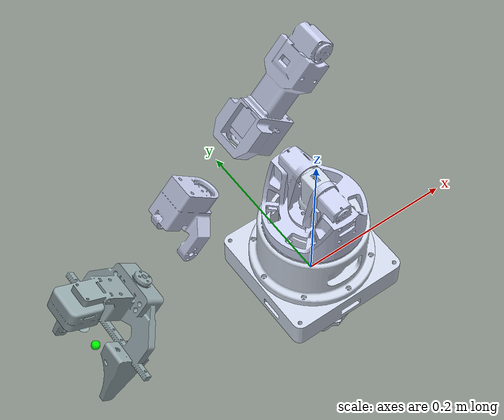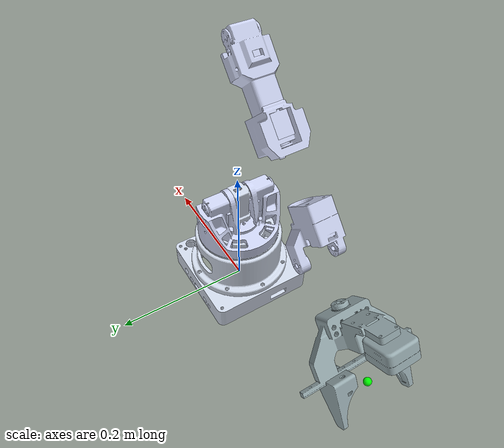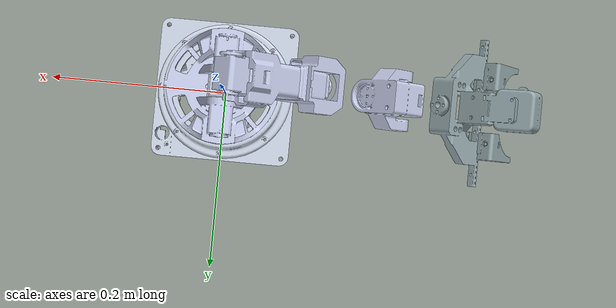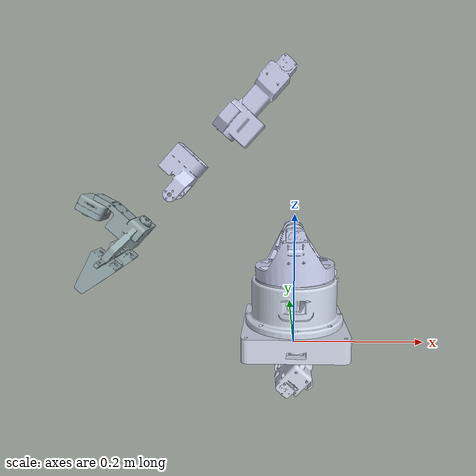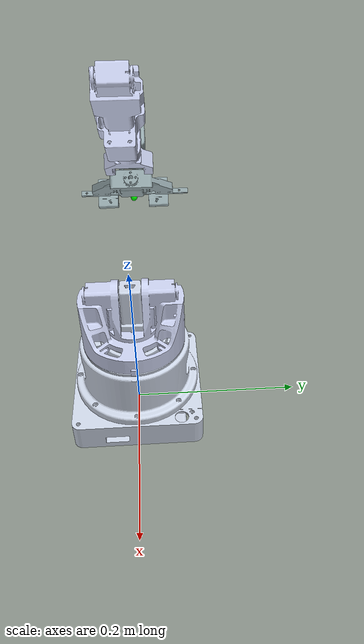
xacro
<?xml version="1.0"?>
<robot xmlns:xacro="http://www.ros.org/wiki/xacro" name="Alicia_D_v5_6_gripper_100mm">
    <!-- Only parameter needed for Gazebo simulation -->
    <xacro:arg name="initial_positions_file"
               default="$(find alicia_moveit_config)/config/initial_positions.yaml" />

    <!-- Import Alicia-D URDF (robot kinematics + mesh) -->
    <xacro:include filename="$(find alicia_d_descriptions)/urdf/Alicia_D_v5_6/Alicia_D_v5_6_gripper_100mm.urdf" />

    <!-- Import gz_ros2_control xacro (replaces fake_components/GenericSystem) -->
    <xacro:include filename="$(find alicia_moveit_config)/config/alicia_d.ros2_control.xacro" />

    <!-- Anchor robot to the world (resolves Gazebo physics drifting FR-1.1) -->
    <link name="world"/>
    <joint name="world_fixed" type="fixed">
        <parent link="world"/>
        <child link="base_link"/>
        <origin xyz="0 0 0" rpy="0 0 0"/>
    </joint>

    <!-- Instantiate gz_ros2_control hardware interface -->
    <xacro:alicia_d_ros2_control
        name="AliciaGazeboHardware"
        initial_positions_file="$(arg initial_positions_file)"/>

</robot>

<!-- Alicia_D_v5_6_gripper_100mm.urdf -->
<robot
  name="Alicia_D_v5_6_gripper_100mm">
 <mujoco>
    <compiler meshdir="../../meshes/Alicia_D_v5_6/gripper_100mm/" discardvisual="false" />
    <contact>
      <exclude body1="base_link" body2="Link1"/>
      <exclude body1="Link1" body2="Link2"/>
      <exclude body1="Link2" body2="Link3"/>
      <exclude body1="Link3" body2="Link4"/>
      <exclude body1="Link4" body2="Link5"/>
      <exclude body1="Link5" body2="Link6"/>
      <exclude body1="Link6" body2="left_gripper"/>
      <exclude body1="left_gripper" body2="right_gripper"/>
      <exclude body1="right_gripper" body2="gripper_center"/>
    </contact>
  </mujoco>
  <link
    name="base_link">
    <inertial>
      <origin
        xyz="0.00082623479003718 0.00797844273246943 0.0457675129432197"
        rpy="0 0 0" />
      <mass
        value="0.733961424639881" />
      <inertia
        ixx="0.00138410344771636"
        ixy="5.6720111040394E-05"
        ixz="5.14360164234991E-07"
        iyy="0.00173617223701436"
        iyz="-1.4865220458936E-05"
        izz="0.00274667683203449" />
    </inertial>
    <visual>
      <origin
        xyz="0 0 0"
        rpy="0 0 0" />
      <geometry>
        <mesh
          filename="package://alicia_d_descriptions/meshes/Alicia_D_v5_6/gripper_100mm/base_link.STL" />
      </geometry>
      <material
        name="">
        <color
          rgba="0.807843137254902 0.843137254901961 0.905882352941176 1" />
      </material>
    </visual>
    <collision>
      <origin
        xyz="0 0 0"
        rpy="0 0 0" />
      <geometry>
        <mesh
          filename="package://alicia_d_descriptions/meshes/Alicia_D_v5_6/gripper_100mm/base_link.STL" />
      </geometry>
    </collision>
  </link>
  <link
    name="Link1">
    <inertial>
      <origin
        xyz="-0.00010985237826358 -1.2904488030386E-05 0.00303812928582997"
        rpy="0 0 0" />
      <mass
        value="0.195233452997321" />
      <inertia
        ixx="0.000258425300590112"
        ixy="8.35832501961148E-07"
        ixz="2.55108522952064E-06"
        iyy="0.000149307709386745"
        iyz="-1.11115243634266E-06"
        izz="0.000339717098519443" />
    </inertial>
    <visual>
      <origin
        xyz="0 0 0"
        rpy="0 0 0" />
      <geometry>
        <mesh
          filename="package://alicia_d_descriptions/meshes/Alicia_D_v5_6/gripper_100mm/Link1.STL" />
      </geometry>
      <material
        name="">
        <color
          rgba="0.796078431372549 0.823529411764706 0.937254901960784 1" />
      </material>
    </visual>
    <collision>
      <origin
        xyz="0 0 0"
        rpy="0 0 0" />
      <geometry>
        <mesh
          filename="package://alicia_d_descriptions/meshes/Alicia_D_v5_6/gripper_100mm/Link1.STL" />
      </geometry>
    </collision>
  </link>
  <joint
    name="Joint1"
    type="revolute">
    <origin
      xyz="0 0 0.1295"
      rpy="0 -0.0397818431857344 0" />
    <parent
      link="base_link" />
    <child
      link="Link1" />
    <axis
      xyz="-0.0397713509246861 0 0.999208806829496" />
    <limit
      lower="-2.749"
      upper="2.749"
      effort="5"
      velocity="12" />
  </joint>
  <link
    name="Link2">
    <inertial>
      <origin
        xyz="0.150588696368553 0.00100782955189907 0.000567596610927442"
        rpy="0 0 0" />
      <mass
        value="0.20703368934203" />
      <inertia
        ixx="0.000128135505495761"
        ixy="1.19129901364274E-07"
        ixz="1.66696350252805E-06"
        iyy="0.000205708394870712"
        iyz="-3.50023649100956E-07"
        izz="0.000122721343687949" />
    </inertial>
    <visual>
      <origin
        xyz="0 0 0"
        rpy="0 0 0" />
      <geometry>
        <mesh
          filename="package://alicia_d_descriptions/meshes/Alicia_D_v5_6/gripper_100mm/Link2.STL" />
      </geometry>
      <material
        name="">
        <color
          rgba="0.807843137254902 0.843137254901961 0.905882352941176 1" />
      </material>
    </visual>
    <collision>
      <origin
        xyz="0 0 0"
        rpy="0 0 0" />
      <geometry>
        <mesh
          filename="package://alicia_d_descriptions/meshes/Alicia_D_v5_6/gripper_100mm/Link2.STL" />
      </geometry>
    </collision>
  </link>
  <joint
    name="Joint2"
    type="revolute">
    <origin
      xyz="0.00170499781414124 0 0.0428360815487805"
      rpy="1.5707963267949 -1.5707963267949 0" />
    <parent
      link="Link1" />
    <child
      link="Link2" />
    <axis
      xyz="0 0 -1" />
    <limit
      lower="-1.57"
      upper="1.57"
      effort="5"
      velocity="12" />
  </joint>
  <link
    name="Link3">
    <inertial>
      <origin
        xyz="-0.00248143569398973 -0.0557863212814898 -0.000269720751643154"
        rpy="0 0 0" />
      <mass
        value="0.0845575626224312" />
      <inertia
        ixx="7.61918175646116E-05"
        ixy="-2.26498935416934E-06"
        ixz="-3.82300371183711E-07"
        iyy="2.87941481845396E-05"
        iyz="-5.38445122938638E-06"
        izz="8.04370482543128E-05" />
    </inertial>
    <visual>
      <origin
        xyz="0 0 0"
        rpy="0 0 0" />
      <geometry>
        <mesh
          filename="package://alicia_d_descriptions/meshes/Alicia_D_v5_6/gripper_100mm/Link3.STL" />
      </geometry>
      <material
        name="">
        <color
          rgba="0.792156862745098 0.819607843137255 0.933333333333333 1" />
      </material>
    </visual>
    <collision>
      <origin
        xyz="0 0 0"
        rpy="0 0 0" />
      <geometry>
        <mesh
          filename="package://alicia_d_descriptions/meshes/Alicia_D_v5_6/gripper_100mm/Link3.STL" />
      </geometry>
    </collision>
  </link>
  <joint
    name="Joint3"
    type="revolute">
    <origin
      xyz="0.223671302741224 0.0226916129580064 -4.99999999962493E-05"
      rpy="0 0 -2.35619449019234" />
    <parent
      link="Link2" />
    <child
      link="Link3" />
    <axis
      xyz="0 0 -1" />
    <limit
      lower="-0.78"
      upper="3.14159"
      effort="5"
      velocity="12" />
  </joint>
  <link
    name="Link4">
    <inertial>
      <origin
        xyz="0.000298365042554871 -0.000601368899121378 0.0659740387706518"
        rpy="0 0 0" />
      <mass
        value="0.0653695946193964" />
      <inertia
        ixx="7.03004180367666E-05"
        ixy="-9.68420336331916E-09"
        ixz="-7.50131050030963E-07"
        iyy="6.87470289266543E-05"
        iyz="4.45270635046865E-08"
        izz="1.68226186322257E-05" />
    </inertial>
    <visual>
      <origin
        xyz="0 0 0"
        rpy="0 0 0" />
      <geometry>
        <mesh
          filename="package://alicia_d_descriptions/meshes/Alicia_D_v5_6/gripper_100mm/Link4.STL" />
      </geometry>
      <material
        name="">
        <color
          rgba="0.792156862745098 0.819607843137255 0.933333333333333 1" />
      </material>
    </visual>
    <collision>
      <origin
        xyz="0 0 0"
        rpy="0 0 0" />
      <geometry>
        <mesh
          filename="package://alicia_d_descriptions/meshes/Alicia_D_v5_6/gripper_100mm/Link4.STL" />
      </geometry>
    </collision>
  </link>
  <joint
    name="Joint4"
    type="revolute">
    <origin
      xyz="0.00211000000000178 -0.0990000000000033 -0.0002000000000025"
      rpy="1.5707963267949 0 0" />
    <parent
      link="Link3" />
    <child
      link="Link4" />
    <axis
      xyz="0 0 -1" />
    <limit
      lower="-2.7925"
      upper="2.7925"
      effort="5"
      velocity="12" />
  </joint>
  <link
    name="Link5">
    <inertial>
      <origin
        xyz="-0.0113684234454121 0.0308687470677907 -0.000870449984784154"
        rpy="0 0 0" />
      <mass
        value="0.0507639007674356" />
      <inertia
        ixx="1.87701011536206E-05"
        ixy="2.01098611808342E-06"
        ixz="-5.15226393562664E-08"
        iyy="2.5102103290534E-05"
        iyz="-4.22413286191211E-08"
        izz="1.72571705255785E-05" />
    </inertial>
    <visual>
      <origin
        xyz="0 0 0"
        rpy="0 0 0" />
      <geometry>
        <mesh
          filename="package://alicia_d_descriptions/meshes/Alicia_D_v5_6/gripper_100mm/Link5.STL" />
      </geometry>
      <material
        name="">
        <color
          rgba="0.792156862745098 0.819607843137255 0.933333333333333 1" />
      </material>
    </visual>
    <collision>
      <origin
        xyz="0 0 0"
        rpy="0 0 0" />
      <geometry>
        <mesh
          filename="package://alicia_d_descriptions/meshes/Alicia_D_v5_6/gripper_100mm/Link5.STL" />
      </geometry>
    </collision>
  </link>
  <joint
    name="Joint5"
    type="revolute">
    <origin
      xyz="0 -0.000500000000001193 0.12235"
      rpy="1.5707963267949 0 0" />
    <parent
      link="Link4" />
    <child
      link="Link5" />
    <axis
      xyz="0 0 1" />
    <limit
      lower="-1.57"
      upper="1.57"
      effort="5"
      velocity="12" />
  </joint>
  <link
    name="Link6">
    <inertial>
      <origin
        xyz="-0.0287644327094169 -0.00016362426163354 0.0341480666014224"
        rpy="0 0 0" />
      <mass
        value="0.123436287808883" />
      <inertia
        ixx="8.16840342315793E-05"
        ixy="1.06380254688595E-08"
        ixz="-3.6010685410149E-06"
        iyy="3.41799234258028E-05"
        iyz="2.08539678027551E-08"
        izz="8.79930006075503E-05" />
    </inertial>
    <visual>
      <origin
        xyz="0 0 0"
        rpy="0 0 0" />
      <geometry>
        <mesh
          filename="package://alicia_d_descriptions/meshes/Alicia_D_v5_6/gripper_100mm/Link6.STL" />
      </geometry>
      <material
        name="">
        <color
          rgba="0.592156862745098 0.666666666666667 0.682352941176471 1" />
      </material>
    </visual>
  </link>
  <joint
    name="Joint6"
    type="revolute">
    <origin
      xyz="-0.00384999999999935 0.0574999999999998 -0.00100000000000219"
      rpy="-1.5707963267949 0 0" />
    <parent
      link="Link5" />
    <child
      link="Link6" />
    <axis
      xyz="0 0 -1" />
    <limit
      lower="-3.14"
      upper="3.14"
      effort="5"
      velocity="12" />
  </joint>
  <link
    name="left_gripper">
    <inertial>
      <origin
        xyz="-2.9328718786914E-08 -0.043408759875847 0.0106596716115473"
        rpy="0 0 0" />
      <mass
        value="0.025646111367227" />
      <inertia
        ixx="6.46830294496821E-06"
        ixy="2.40351488984878E-11"
        ixz="4.69831536341765E-12"
        iyy="5.13428726038217E-06"
        iyz="1.26432034940424E-06"
        izz="8.03606327071918E-06" />
    </inertial>
    <visual>
      <origin
        xyz="0 0 0"
        rpy="0 0 0" />
      <geometry>
        <mesh
          filename="package://alicia_d_descriptions/meshes/Alicia_D_v5_6/gripper_100mm/left_gripper.STL" />
      </geometry>
      <material
        name="">
        <color
          rgba="0.592156862745098 0.666666666666667 0.682352941176471 1" />
      </material>
    </visual>
    <collision name="finger_pad_collision">
      <origin
        xyz="0 -0.030 0.0138"
        rpy="0 0 0" />
      <geometry>
        <box size="0.070 0.070 0.026" />
      </geometry>
    </collision>
  </link>
  <joint
    name="Gripper"
    type="prismatic">
    <origin
      xyz="-0.000200000000001033 -0.050497849845622 0.130979659620446"
      rpy="1.5707963267949 0 0" />
    <parent
      link="Link6" />
    <child
      link="left_gripper" />
    <axis
      xyz="0 0 -1" />
    <limit
      lower="0"
      upper="0.05"
      effort="100"
      velocity="12" />
  </joint>
  <link
    name="right_gripper">
    <inertial>
      <origin
        xyz="3.00579236500731E-08 0.0434087583688983 0.0106596716224533"
        rpy="0 0 0" />
      <mass
        value="0.0256461131643355" />
      <inertia
        ixx="6.46830364865983E-06"
        ixy="2.38640204763436E-11"
        ixz="-4.57155329893679E-12"
        iyy="5.13428762370586E-06"
        iyz="-1.2643206279872E-06"
        izz="8.03606376010844E-06" />
    </inertial>
    <visual>
      <origin
        xyz="0 0 0"
        rpy="0 0 0" />
      <geometry>
        <mesh
          filename="package://alicia_d_descriptions/meshes/Alicia_D_v5_6/gripper_100mm/right_gripper.STL" />
      </geometry>
      <material
        name="">
        <color
          rgba="0.592156862745098 0.666666666666667 0.682352941176471 1" />
      </material>
    </visual>
    <collision name="finger_pad_collision">
      <origin
        xyz="0 0.030 0.0138"
        rpy="0 0 0" />
      <geometry>
        <box size="0.070 0.070 0.026" />
      </geometry>
    </collision>
  </link>
  <joint
    name="right_finger"
    type="prismatic">
    <origin
      xyz="-0.0002 0.050502 0.13098"
      rpy="-1.5708 0 0" />
    <parent
      link="Link6" />
    <child
      link="right_gripper" />
    <axis
      xyz="0 0 1" />
    <limit
      lower="-0.05"
      upper="0"
      effort="100"
      velocity="12" />
    <mimic joint="Gripper" multiplier="-1" offset="0"/>
  </joint>
  <gazebo reference="left_gripper">
    <mu1>8.0</mu1>
    <mu2>8.0</mu2>
    <slip1>0.0</slip1>
    <slip2>0.0</slip2>
    <kp>200000.0</kp>
    <kd>40.0</kd>
    <maxVel>0.01</maxVel>
    <minDepth>0.001</minDepth>
  </gazebo>
  <gazebo reference="right_gripper">
    <mu1>8.0</mu1>
    <mu2>8.0</mu2>
    <slip1>0.0</slip1>
    <slip2>0.0</slip2>
    <kp>200000.0</kp>
    <kd>40.0</kd>
    <maxVel>0.01</maxVel>
    <minDepth>0.001</minDepth>
  </gazebo>
  <link
    name="gripper_center">

    <visual>
      <origin
        xyz="0 0 0"
        rpy="0 0 0" />
      <geometry>
        <sphere radius="0.005" />
      </geometry>
      <material
        name="green_virtual_sphere_material">
        <color
          rgba="0 1 0 1" />
      </material>
    </visual>
  </link>

  <joint
    name="finger"
    type="fixed">
    <origin
      xyz="-0.0002 0 0.10"
      rpy="0 0 0" />
    <parent
      link="Link6" />
    <child
      link="gripper_center" />
    <axis
      xyz="0 0 0" />
  </joint>
</robot>
